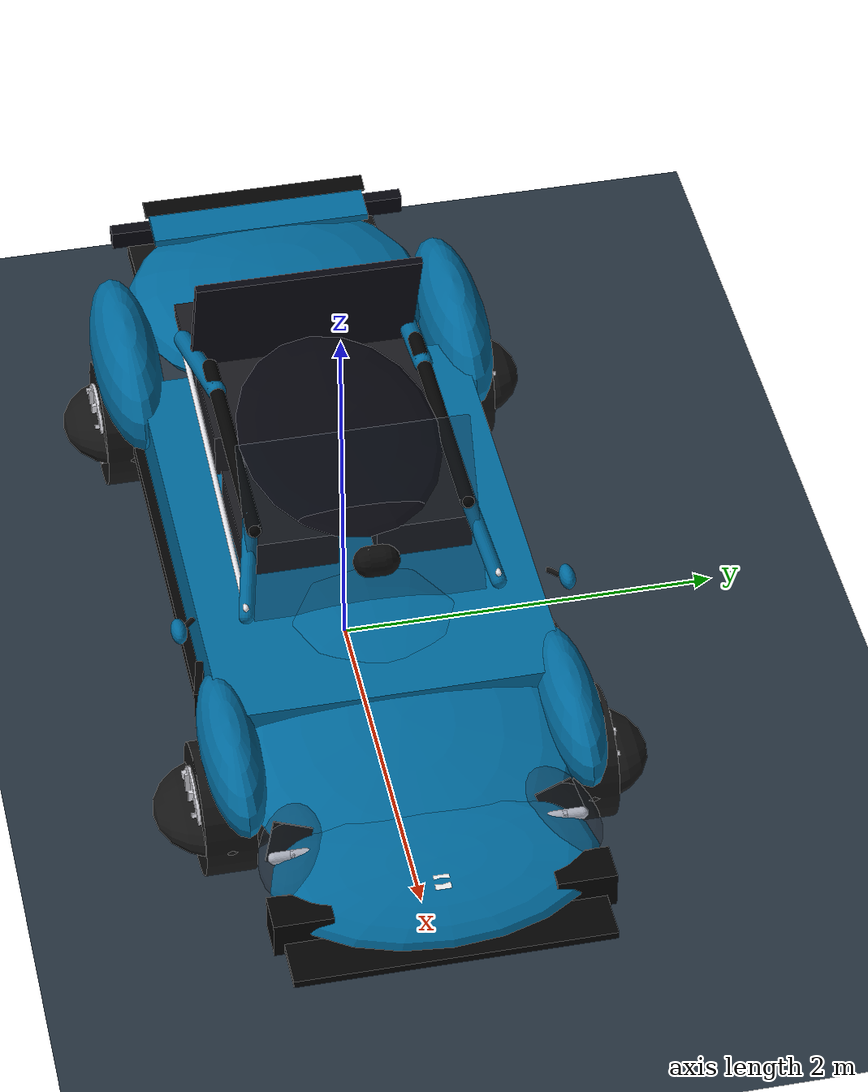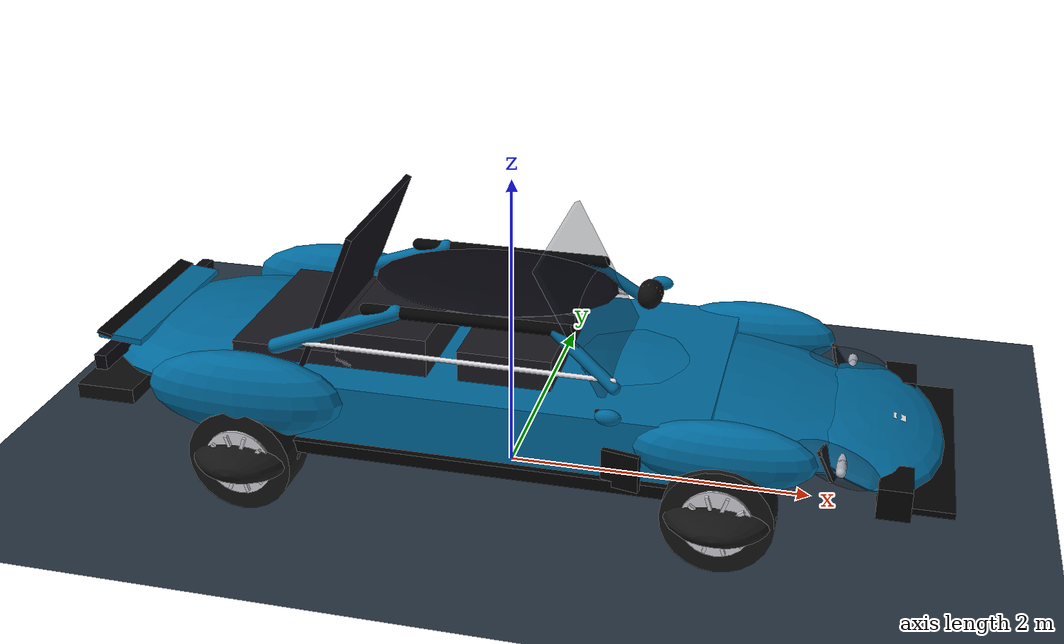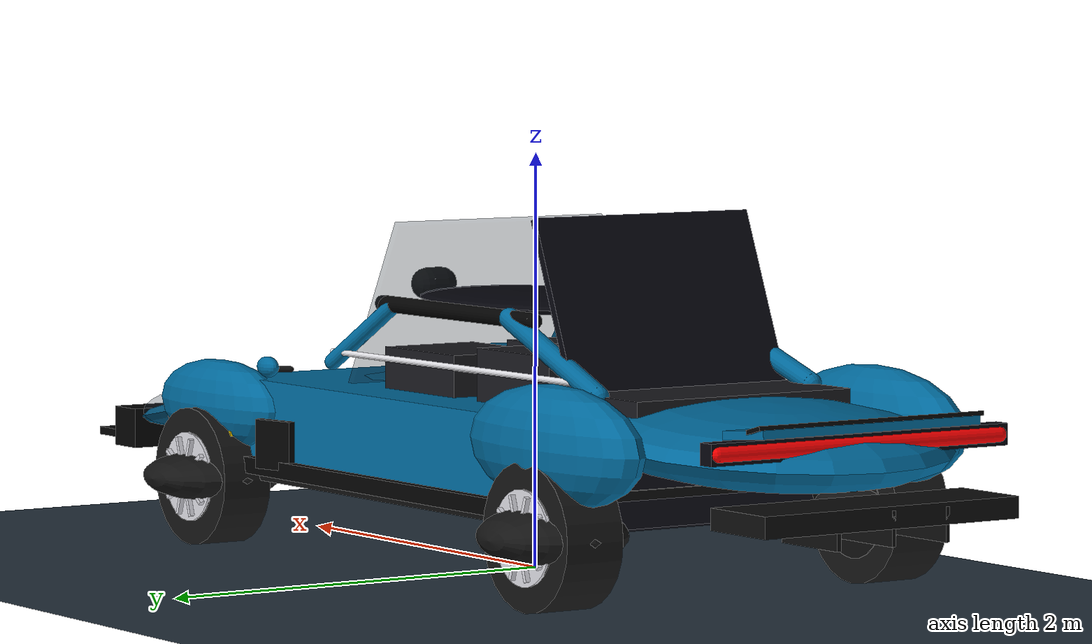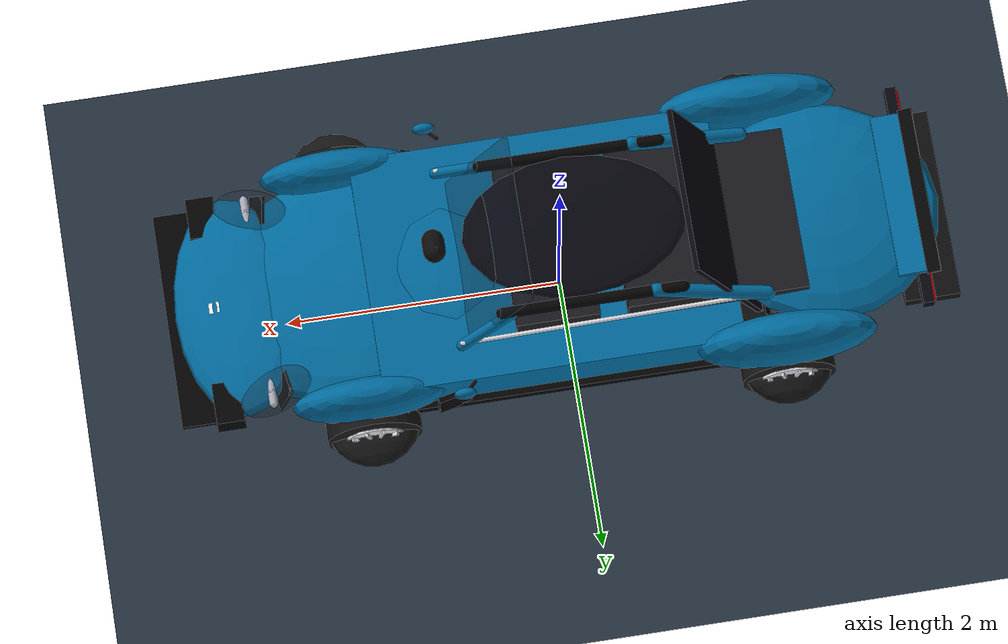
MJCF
<mujoco model="xiaomi_su7_final">
  <compiler angle="degree" coordinate="local" inertiafromgeom="true"/>
  <option timestep="0.005" gravity="0 0 -9.81" integrator="RK4"/>

  <default>
    <joint damping="0.5" armature="0.1"/>
    <geom condim="3" friction="1.0 0.05 0.05" solimp="0.9 0.95 0.001" solref="0.02 1"/>
    <default class="body_col">
        <geom material="body_paint" type="ellipsoid"/>
    </default>
  </default>

  <asset>
    <texture type="skybox" builtin="gradient" rgb1="0.5 0.7 0.9" rgb2="0.1 0.1 0.2" width="1024" height="1024"/>
    <texture name="grid" type="2d" builtin="checker" rgb1=".2 .3 .4" rgb2=".1 .1 .1" width="512" height="512" mark="edge" markrgb=".8 .8 .8"/>
    <material name="grid" texture="grid" texrepeat="5 5" texuniform="true" reflectance=".2"/>

    <!-- Materials -->
    <!-- Paint: Deep Bay Blue -->
    <material name="body_paint" rgba="0.0 0.42 0.62 1" shininess="0.95" specular="0.85" reflectance="0.3"/>

    <!-- Trim & Plastics -->
    <material name="black_trim" rgba="0.05 0.05 0.05 1" shininess="0.3" specular="0.3"/>
    <material name="black_gloss" rgba="0.01 0.01 0.01 1" shininess="0.95" specular="1.0" reflectance="0.3"/> <!-- Piano Black -->
    <material name="chrome" rgba="0.9 0.9 0.92 1" shininess="1.0" specular="1.0" reflectance="0.8"/> <!-- Window trim -->
    <material name="interior_dark" rgba="0.1 0.1 0.12 1" shininess="0.1"/> <!-- Interior seats -->

    <!-- Glass Types -->
    <!-- Front Windshield: Clearer, slightly green/blue tint -->
    <material name="glass_front" rgba="0.1 0.15 0.2 0.3" shininess="1.0" specular="1.0" reflectance="0.4"/>
    <!-- Roof & Rear: Privacy glass (darker) -->
    <material name="glass_dark" rgba="0.02 0.02 0.05 0.9" shininess="1.0" specular="1.0" reflectance="0.7"/>

    <!-- Wheels & Tires -->
    <material name="rim_silver" rgba="0.85 0.85 0.88 1" shininess="0.9" specular="0.9"/>
    <material name="rim_black" rgba="0.05 0.05 0.05 1" shininess="0.6"/>
    <!-- Tire: Matte rubber, very low specular -->
    <material name="tire_rubber" rgba="0.08 0.08 0.08 1" shininess="0.1" specular="0.1" reflectance="0.02"/>
    <!-- Tire Sidewall: Slightly smoother -->
    <material name="tire_sidewall" rgba="0.08 0.08 0.08 1" shininess="0.3" specular="0.2" reflectance="0.05"/>

    <!-- Lights & Others -->
    <material name="light_white" rgba="0.95 0.95 1.0 1" emission="1.0"/>
    <material name="light_red" rgba="1.0 0.0 0.0 1" emission="0.8"/>
    <material name="caliper_yellow" rgba="1.0 0.85 0.0 1" shininess="0.9"/>
    <material name="logo_silver" rgba="0.95 0.95 0.95 1" shininess="1.0" specular="1.0"/>
  </asset>

  <worldbody>
    <light pos="5 5 10" dir="-0.5 -0.5 -1" diffuse="0.8 0.8 0.8" specular="0.5 0.5 0.5"/>
    <light pos="-5 -5 10" dir="0.5 0.5 -1" diffuse="0.4 0.4 0.4" specular="0.2 0.2 0.2"/>
    <geom name="floor" size="30 30 0.1" type="plane" material="grid"/>

    <!-- Car Body Group -->
    <body name="car" pos="0 0 0.37">
      <joint type="free"/>

      <!-- ==================== INTERIOR PROXY (To make glass look real) ==================== -->
      <!-- Front Seats -->
      <geom name="seat_fl" type="box" size="0.3 0.25 0.3" pos="0.1 0.35 0.4" material="interior_dark"/>
      <geom name="seat_fr" type="box" size="0.3 0.25 0.3" pos="0.1 -0.35 0.4" material="interior_dark"/>
      <!-- Rear Seats -->
      <geom name="seat_rear" type="box" size="0.3 0.6 0.35" pos="-0.7 0 0.4" material="interior_dark"/>
      <!-- Parcel Shelf -->
      <geom name="shelf" type="box" size="0.4 0.6 0.05" pos="-1.3 0 0.55" material="interior_dark"/>

      <!-- ==================== CHASSIS & LOWER BODY ==================== -->
      <geom name="chassis_base" type="box" size="1.4 0.85 0.08" pos="0 0 0.08" material="black_trim"/>
      <geom name="skirt_l" type="box" size="1.2 0.05 0.04" pos="0 0.88 0.08" material="black_gloss"/>
      <geom name="skirt_r" type="box" size="1.2 0.05 0.04" pos="0 -0.88 0.08" material="black_gloss"/>
      <geom name="body_core" type="box" size="1.3 0.88 0.2" pos="0.1 0 0.3" material="body_paint"/>

      <!-- ==================== FRONT SECTION ==================== -->
      <geom name="hood_main" type="ellipsoid" size="1.1 0.86 0.14" pos="1.5 0 0.32" euler="0 8 0" material="body_paint"/>
      <geom name="nose" type="ellipsoid" size="0.45 0.82 0.1" pos="2.35 0 0.22" euler="0 12 0" material="body_paint"/>
      <geom name="front_lip" type="box" size="0.2 0.8 0.02" pos="2.65 0 0.1" material="black_gloss"/>
      <geom name="intake_l" type="box" size="0.1 0.15 0.1" pos="2.5 0.7 0.15" material="black_gloss"/>
      <geom name="intake_r" type="box" size="0.1 0.15 0.1" pos="2.5 -0.7 0.15" material="black_gloss"/>

      <!-- ==================== GREENHOUSE (Windows & Pillars) ==================== -->

      <!-- A-Pillars -->
      <geom name="pillar_a_l" type="capsule" size="0.04" fromto="0.8 0.65 0.6  0.4 0.55 0.9" material="body_paint"/>
      <geom name="pillar_a_r" type="capsule" size="0.04" fromto="0.8 -0.65 0.6 0.4 -0.55 0.9" material="body_paint"/>

      <!-- B-Pillars (Piano Black) -->
      <!-- Removed protruding pillars to fix visual artifact -->

      <!-- C-Pillars / Roof Rail -->
      <geom name="pillar_c_l" type="capsule" size="0.05" fromto="-0.6 0.55 0.9 -1.4 0.6 0.6" material="body_paint"/>
      <geom name="pillar_c_r" type="capsule" size="0.05" fromto="-0.6 -0.55 0.9 -1.4 -0.6 0.6" material="body_paint"/>

      <!-- Window Trim (Chrome/Black line above windows) -->
      <geom name="trim_l" type="capsule" size="0.015" fromto="0.8 0.65 0.65 -1.2 0.62 0.65" material="chrome"/> <!-- Simplified arc -->
      <geom name="trim_r" type="capsule" size="0.015" fromto="0.8 -0.65 0.65 -1.2 -0.62 0.65" material="chrome"/>

      <!-- Glass Surfaces -->
      <!-- Windshield -->
      <geom name="windshield" type="box" size="0.65 0.6 0.02" pos="0.6 0 0.72" euler="0 62 0" material="glass_front"/>

      <!-- Panoramic Roof (Improved with Frame) -->
      <!-- The glass -->
      <geom name="roof_glass" type="ellipsoid" size="0.8 0.52 0.05" pos="-0.1 0 0.93" material="glass_dark"/>
      <!-- The black frame/rails merging with glass -->
      <geom name="roof_rail_l" type="capsule" size="0.04" fromto="0.5 0.55 0.9 -0.8 0.55 0.9" material="black_gloss"/>
      <geom name="roof_rail_r" type="capsule" size="0.04" fromto="0.5 -0.55 0.9 -0.8 -0.55 0.9" material="black_gloss"/>

      <!-- Side Windows (Front - Clearer) -->
      <!-- Removed window_fl -->
      <!-- Removed window_fr -->

      <!-- Side Windows (Rear - Darker) -->
      <!-- Removed window_rl -->
      <!-- Removed window_rr -->

      <!-- Rear Windshield (Fastback slope, Dark) -->
      <geom name="rear_glass" type="box" size="0.75 0.6 0.02" pos="-1.15 0 0.68" euler="0 -68 0" material="glass_dark"/>

      <!-- ==================== REAR SECTION ==================== -->
      <geom name="trunk_deck" type="ellipsoid" size="0.85 0.82 0.18" pos="-1.9 0 0.4" euler="0 -4 0" material="body_paint"/>
      <geom name="spoiler_base" type="box" size="0.15 0.6 0.02" pos="-2.5 0 0.52" euler="0 5 0" material="body_paint"/>
      <geom name="spoiler_wing" type="box" size="0.05 0.62 0.01" pos="-2.6 0 0.55" euler="0 15 0" material="black_gloss"/>

      <!-- Diffuser -->
      <geom name="diffuser_main" type="box" size="0.2 0.7 0.05" pos="-2.6 0 0.15" material="black_trim"/>
      <geom name="diffuser_fin1" type="box" size="0.2 0.01 0.08" pos="-2.6 0 0.1" material="black_trim"/>
      <geom name="diffuser_fin2" type="box" size="0.2 0.01 0.08" pos="-2.6 0.3 0.1" material="black_trim"/>
      <geom name="diffuser_fin3" type="box" size="0.2 0.01 0.08" pos="-2.6 -0.3 0.1" material="black_trim"/>

      <!-- ==================== FENDERS ==================== -->
      <geom name="fender_fl" type="ellipsoid" size="0.55 0.15 0.22" pos="1.5 0.86 0.35" material="body_paint"/>
      <geom name="fender_fr" type="ellipsoid" size="0.55 0.15 0.22" pos="1.5 -0.86 0.35" material="body_paint"/>
      <geom name="fender_rl" type="ellipsoid" size="0.65 0.18 0.28" pos="-1.5 0.9 0.4" material="body_paint"/>
      <geom name="fender_rr" type="ellipsoid" size="0.65 0.18 0.28" pos="-1.5 -0.9 0.4" material="body_paint"/>

      <!-- ==================== DETAILS ==================== -->
      <!-- LiDAR -->
      <geom name="lidar_base" type="box" size="0.06 0.08 0.01" pos="0.9 0 0.93" material="black_trim"/>
      <geom name="lidar_bump" type="capsule" size="0.08 0.04" pos="0.9 0 0.95" zaxis="0 1 0" material="black_trim"/>
      <geom name="lidar_window" type="box" size="0.03 0.05 0.015" pos="0.94 0 0.95" material="glass_dark"/>

      <!-- Headlights -->
      <geom name="hl_housing_l" type="ellipsoid" size="0.28 0.16 0.09" pos="2.15 0.68 0.28" euler="0 12 18" material="glass_front"/>
      <geom name="hl_inner_l" type="box" size="0.1 0.1 0.01" pos="2.1 0.68 0.28" euler="0 60 18" material="black_trim"/>
      <geom name="hl_bulb_l1" type="capsule" size="0.03 0.05" pos="2.18 0.72 0.28" zaxis="0 1 0" material="light_white"/>
      <geom name="hl_bulb_l2" type="capsule" size="0.03 0.05" pos="2.18 0.64 0.28" zaxis="0 1 0" material="light_white"/>

      <geom name="hl_housing_r" type="ellipsoid" size="0.28 0.16 0.09" pos="2.15 -0.68 0.28" euler="0 12 -18" material="glass_front"/>
      <geom name="hl_inner_r" type="box" size="0.1 0.1 0.01" pos="2.1 -0.68 0.28" euler="0 60 -18" material="black_trim"/>
      <geom name="hl_bulb_r1" type="capsule" size="0.03 0.05" pos="2.18 -0.72 0.28" zaxis="0 1 0" material="light_white"/>
      <geom name="hl_bulb_r2" type="capsule" size="0.03 0.05" pos="2.18 -0.64 0.28" zaxis="0 1 0" material="light_white"/>

      <!-- Vents & Lights -->
      <geom name="vent_l" type="box" size="0.12 0.02 0.12" pos="0.9 0.92 0.2" euler="0 0 12" material="black_gloss"/>
      <geom name="vent_r" type="box" size="0.12 0.02 0.12" pos="0.9 -0.92 0.2" euler="0 0 -12" material="black_gloss"/>
      <geom name="tail_bar" type="capsule" size="0.04 0.78" pos="-2.55 0 0.45" zaxis="0 1 0" material="light_red"/>
      <geom name="tail_housing" type="box" size="0.04 0.82 0.05" pos="-2.53 0 0.45" material="glass_dark"/>

      <!-- Mirrors -->
      <body name="mirror_l" pos="0.75 0.92 0.58">
        <geom name="mirror_stem_l" type="capsule" size="0.015" fromto="0 0 0 0.05 0.05 0" material="black_trim"/>
        <geom name="mirror_housing_l" type="ellipsoid" size="0.08 0.04 0.05" pos="0.08 0.08 0.01" material="body_paint"/>
        <geom name="mirror_face_l" type="ellipsoid" size="0.005 0.038 0.045" pos="0.07 0.08 0.01" material="rim_silver"/>
      </body>
      <body name="mirror_r" pos="0.75 -0.92 0.58">
        <geom name="mirror_stem_r" type="capsule" size="0.015" fromto="0 0 0 0.05 -0.05 0" material="black_trim"/>
        <geom name="mirror_housing_r" type="ellipsoid" size="0.08 0.04 0.05" pos="0.08 -0.08 0.01" material="body_paint"/>
        <geom name="mirror_face_r" type="ellipsoid" size="0.005 0.038 0.045" pos="0.07 -0.08 0.01" material="rim_silver"/>
      </body>

      <!-- Logo -->
      <geom name="logo_front" type="box" size="0.04 0.04 0.005" pos="2.5 0 0.28" euler="0 15 0" material="logo_silver"/>
      <geom name="logo_rear" type="box" size="0.03 0.1 0.005" pos="-2.3 0 0.45" euler="0 -80 0" material="logo_silver"/>

      <!-- ==================== WHEELS ==================== -->
      <!-- Improved realism: Added sidewall bulge visual -->

      <!-- Front Left -->
      <body name="steer_fl" pos="1.5 0.92 0.0">
        <joint name="steering_fl" axis="0 0 1" limited="true" range="-0.6 0.6" damping="5"/>
        <geom name="knuckle_fl" type="cylinder" size="0.1 0.05" euler="90 0 0" material="black_trim" mass="1"/>
        <body name="wheel_fl" pos="0 0 0">
          <joint name="joint_fl" axis="0 1 0"/>
          <!-- Physics Tire (Hidden/Inner) -->
          <geom name="tire_fl" type="cylinder" size="0.34 0.13" zaxis="0 1 0" material="tire_rubber" mass="10"/>
          <!-- Visual Sidewall (Slightly larger, thinner) to simulate bulge -->
          <geom name="tire_wall_fl" type="ellipsoid" size="0.345 0.125 0.345" zaxis="0 1 0" material="tire_sidewall" mass="0" group="1"/>

          <geom name="rim_fl" type="cylinder" size="0.22 0.135" zaxis="0 1 0" material="rim_black"/>
          <geom name="rim_edge_fl" type="cylinder" size="0.22 0.01" pos="0 0.136 0" zaxis="0 1 0" material="rim_silver"/>
          <!-- Spokes -->
          <geom name="spoke_fl1" type="box" size="0.2 0.03 0.01" pos="0 0.14 0" material="rim_silver"/>
          <geom name="spoke_fl2" type="box" size="0.2 0.03 0.01" pos="0 0.14 0" euler="0 72 0" material="rim_silver"/>
          <geom name="spoke_fl3" type="box" size="0.2 0.03 0.01" pos="0 0.14 0" euler="0 144 0" material="rim_silver"/>
          <geom name="spoke_fl4" type="box" size="0.2 0.03 0.01" pos="0 0.14 0" euler="0 216 0" material="rim_silver"/>
          <geom name="spoke_fl5" type="box" size="0.2 0.03 0.01" pos="0 0.14 0" euler="0 288 0" material="rim_silver"/>
          <geom name="caliper_fl" type="box" size="0.14 0.05 0.09" pos="-0.12 0 0.15" material="caliper_yellow" mass="0"/>
        </body>
      </body>

      <!-- Front Right -->
      <body name="steer_fr" pos="1.5 -0.92 0.0">
        <inertial pos="0 0 0" mass="5" diaginertia="0.1 0.1 0.1"/>
        <joint name="steering_fr" axis="0 0 1" limited="true" range="-0.6 0.6" damping="5"/>
        <geom name="knuckle_fr" type="cylinder" size="0.1 0.05" euler="90 0 0" material="black_trim" mass="0"/>
        <body name="wheel_fr" pos="0 0 0">
          <joint name="joint_fr" axis="0 1 0"/>
          <geom name="tire_fr" type="cylinder" size="0.34 0.13" zaxis="0 1 0" material="tire_rubber"/>
          <geom name="tire_wall_fr" type="ellipsoid" size="0.345 0.125 0.345" zaxis="0 1 0" material="tire_sidewall" mass="0" group="1"/>
          <geom name="rim_fr" type="cylinder" size="0.22 0.135" zaxis="0 1 0" material="rim_black"/>
          <geom name="rim_edge_fr" type="cylinder" size="0.22 0.01" pos="0 -0.136 0" zaxis="0 1 0" material="rim_silver"/>
          <geom name="spoke_fr1" type="box" size="0.2 0.03 0.01" pos="0 -0.14 0" material="rim_silver"/>
          <geom name="spoke_fr2" type="box" size="0.2 0.03 0.01" pos="0 -0.14 0" euler="0 72 0" material="rim_silver"/>
          <geom name="spoke_fr3" type="box" size="0.2 0.03 0.01" pos="0 -0.14 0" euler="0 144 0" material="rim_silver"/>
          <geom name="spoke_fr4" type="box" size="0.2 0.03 0.01" pos="0 -0.14 0" euler="0 216 0" material="rim_silver"/>
          <geom name="spoke_fr5" type="box" size="0.2 0.03 0.01" pos="0 -0.14 0" euler="0 288 0" material="rim_silver"/>
          <geom name="caliper_fr" type="box" size="0.14 0.05 0.09" pos="-0.12 0 0.15" material="caliper_yellow" mass="0"/>
        </body>
      </body>

      <!-- Rear Left -->
      <body name="wheel_rl" pos="-1.5 0.92 0.0">
        <joint name="joint_rl" axis="0 1 0"/>
        <geom name="tire_rl" type="cylinder" size="0.34 0.15" zaxis="0 1 0" material="tire_rubber"/>
        <geom name="tire_wall_rl" type="ellipsoid" size="0.345 0.145 0.345" zaxis="0 1 0" material="tire_sidewall" mass="0" group="1"/>
        <geom name="rim_rl" type="cylinder" size="0.22 0.155" zaxis="0 1 0" material="rim_black"/>
        <geom name="rim_edge_rl" type="cylinder" size="0.22 0.01" pos="0 0.156 0" zaxis="0 1 0" material="rim_silver"/>
        <geom name="spoke_rl1" type="box" size="0.2 0.03 0.01" pos="0 0.16 0" material="rim_silver"/>
        <geom name="spoke_rl2" type="box" size="0.2 0.03 0.01" pos="0 0.16 0" euler="0 72 0" material="rim_silver"/>
        <geom name="spoke_rl3" type="box" size="0.2 0.03 0.01" pos="0 0.16 0" euler="0 144 0" material="rim_silver"/>
        <geom name="spoke_rl4" type="box" size="0.2 0.03 0.01" pos="0 0.16 0" euler="0 216 0" material="rim_silver"/>
        <geom name="spoke_rl5" type="box" size="0.2 0.03 0.01" pos="0 0.16 0" euler="0 288 0" material="rim_silver"/>
        <geom name="caliper_rl" type="box" size="0.1 0.04 0.07" pos="0.12 0 0.15" material="caliper_yellow" mass="0"/>
      </body>

      <!-- Rear Right -->
      <body name="wheel_rr" pos="-1.5 -0.92 0.0">
        <joint name="joint_rr" axis="0 1 0"/>
        <geom name="tire_rr" type="cylinder" size="0.34 0.15" zaxis="0 1 0" material="tire_rubber"/>
        <geom name="tire_wall_rr" type="ellipsoid" size="0.345 0.145 0.345" zaxis="0 1 0" material="tire_sidewall" mass="0" group="1"/>
        <geom name="rim_rr" type="cylinder" size="0.22 0.155" zaxis="0 1 0" material="rim_black"/>
        <geom name="rim_edge_rr" type="cylinder" size="0.22 0.01" pos="0 -0.156 0" zaxis="0 1 0" material="rim_silver"/>
        <geom name="spoke_rr1" type="box" size="0.2 0.03 0.01" pos="0 -0.16 0" material="rim_silver"/>
        <geom name="spoke_rr2" type="box" size="0.2 0.03 0.01" pos="0 -0.16 0" euler="0 72 0" material="rim_silver"/>
        <geom name="spoke_rr3" type="box" size="0.2 0.03 0.01" pos="0 -0.16 0" euler="0 144 0" material="rim_silver"/>
        <geom name="spoke_rr4" type="box" size="0.2 0.03 0.01" pos="0 -0.16 0" euler="0 216 0" material="rim_silver"/>
        <geom name="spoke_rr5" type="box" size="0.2 0.03 0.01" pos="0 -0.16 0" euler="0 288 0" material="rim_silver"/>
        <geom name="caliper_rr" type="box" size="0.1 0.04 0.07" pos="0.12 0 0.15" material="caliper_yellow" mass="0"/>
      </body>

    </body>
  </worldbody>

  <actuator>
    <position name="steer_fl" joint="steering_fl" kp="5000" ctrlrange="-0.6 0.6"/>
    <position name="steer_fr" joint="steering_fr" kp="5000" ctrlrange="-0.6 0.6"/>
    <motor name="drive_fl" joint="joint_fl" gear="800"/>
    <motor name="drive_fr" joint="joint_fr" gear="800"/>
    <motor name="drive_rl" joint="joint_rl" gear="800"/>
    <motor name="drive_rr" joint="joint_rr" gear="800"/>
  </actuator>
</mujoco>
